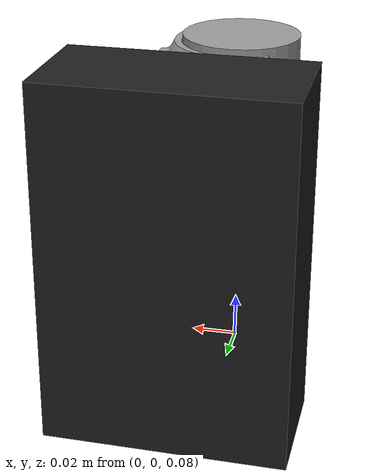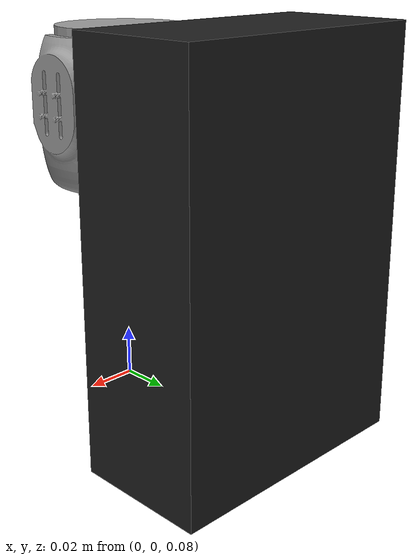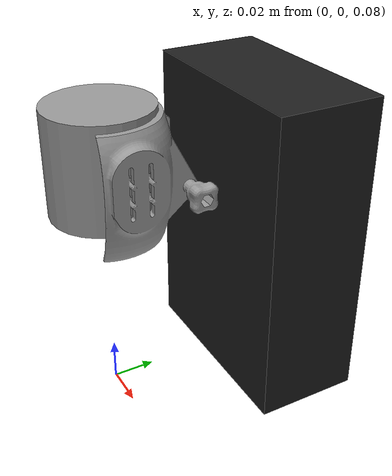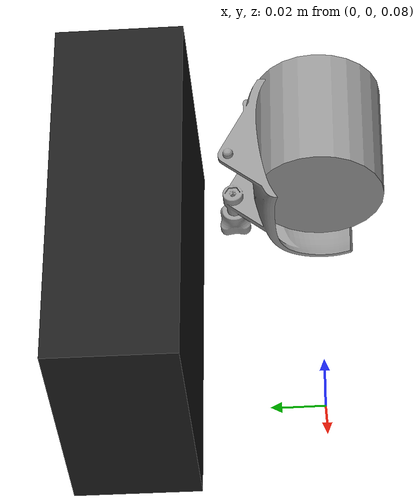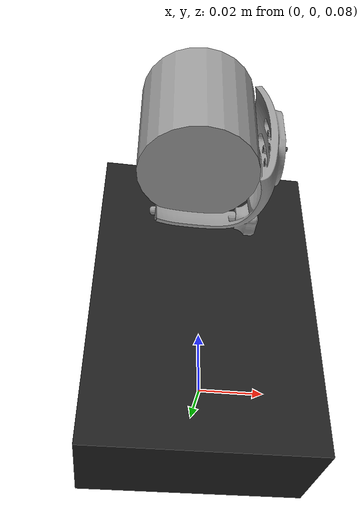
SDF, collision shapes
<?xml version='1.0'?>
<sdf version='1.6'>
  <model name='gimbal_small_2d'>
    <pose>0 0 0.18 0 0 0</pose>

    <link name='base_link'>
       <inertial>
        <mass>0.2</mass>
        <inertia>
          <ixx>0.0001</ixx>
          <ixy>0</ixy>
          <ixz>0</ixz>
          <iyy>0.0001</iyy>
          <iyz>0</iyz>
          <izz>0.0001</izz>
        </inertia>
      </inertial>

      <visual name='base_main_viz'>
        <geometry>
         <mesh>
           <scale>0.001 0.001 0.001</scale>
           <uri>model://gimbal_small_2d/meshes/base_main.dae</uri>
         </mesh>
        </geometry>
        <material>
          <script>
            <uri>file://media/materials/scripts/gazebo.material</uri>
            <name>Gazebo/FlatBlack</name>
          </script>
        </material>
      </visual>

     <visual name='base_arm_viz'>
        <geometry>
         <mesh>
           <scale>0.001 0.001 0.001</scale>
           <uri>model://gimbal_small_2d/meshes/base_arm.dae</uri>
         </mesh>
        </geometry>
        <material>
          <script>
            <uri>file://media/materials/scripts/gazebo.material</uri>
            <name>Gazebo/FlatBlack</name>
          </script>
        </material>
      </visual>

      <collision name='base_col'>
        <pose>0.01 0.075 -0.025 0 0 0</pose>
        <geometry>
          <box>
            <size>0.1 0.05 0.15</size>
          </box>
        </geometry>
        <surface>
          <friction>
            <ode>
              <mu>1</mu>
              <mu2>1</mu2>
              <fdir1>0 0 0</fdir1>
              <slip1>0</slip1>
              <slip2>0</slip2>
            </ode>
          </friction>
        </surface>
      </collision>
    </link>

    <link name='tilt_link'>
       <inertial>
        <mass>0.01</mass>
        <inertia>
          <ixx>0.00001</ixx>
          <ixy>0</ixy>
          <ixz>0</ixz>
          <iyy>0.00001</iyy>
          <iyz>0</iyz>
          <izz>0.00001</izz>
        </inertia>
      </inertial>
     <visual name='tilt_viz'>
        <pose>0 0 -0.005 0 0 0</pose>
        <geometry>
         <mesh>
           <scale>0.001 0.001 0.001</scale>
           <uri>model://gimbal_small_2d/meshes/tilt.dae</uri>
         </mesh>
        </geometry>
        <material>
          <script>
            <uri>file://media/materials/scripts/gazebo.material</uri>
            <name>Gazebo/Grey</name>
          </script>
        </material>
      </visual>

     <collision name='tilt_col'>
        <pose>0 0 -0.005 0 0 0</pose>
        <geometry>
         <mesh>
           <scale>0.001 0.001 0.001</scale>
           <uri>model://gimbal_small_2d/meshes/tilt.dae</uri>
         </mesh>
        </geometry>
      </collision>

      <visual name='camera_viz'>
        <pose>0 0 0.02 0 0 0</pose>
        <geometry>
          <cylinder>
            <radius>0.025</radius>
            <length>0.050</length>
          </cylinder>
        </geometry>

         <material>
          <script>
            <uri>file://media/materials/scripts/gazebo.material</uri>
            <name>Gazebo/Grey</name>
          </script>
        </material>
     </visual>

      <collision name='camera_col'>
        <pose>0 0 0.02 0 0 0</pose>
        <geometry>
          <cylinder>
            <radius>0.025</radius>
            <length>0.050</length>
          </cylinder>
        </geometry>
     </collision>

      <sensor name="camera" type="camera">
        <pose>0 0 0 -1.57 -1.57 0</pose>
        <camera>
          <horizontal_fov>2.0</horizontal_fov>
          <image>
            <width>640</width>
            <height>480</height>
          </image>
          <clip>
            <near>0.05</near>
            <far>15000</far>
          </clip>
        </camera>
        <always_on>1</always_on>
        <update_rate>10</update_rate>
        <visualize>1</visualize>
      </sensor>

    </link>

    <joint name='tilt_joint' type='revolute'>
       <parent>base_link</parent>
       <child>tilt_link</child>

      <physics>
        <ode>
          <implicit_spring_damper>1</implicit_spring_damper>
        </ode>
      </physics>

      <axis>
        <xyz>1 0 0</xyz>
        <dynamics>
          <damping>0.5</damping>
        </dynamics>
        <use_parent_model_frame>1</use_parent_model_frame>
        <limit>
          <lower>-0.1</lower>
          <upper>3.14159265</upper>
          <effort>10</effort>
          <velocity>-1</velocity>
        </limit>
      </axis>
      <pose>0 0 0.02 0 0 0</pose>
    </joint>

    <plugin name="gimbal_small_2d" filename="libGimbalSmall2dPlugin.so">
      <joint>tilt_joint</joint>
    </plugin>
  </model>
</sdf>
